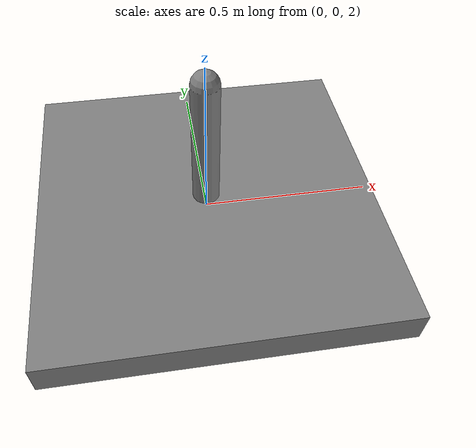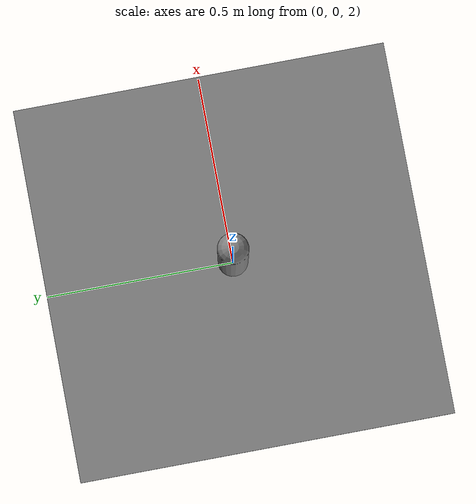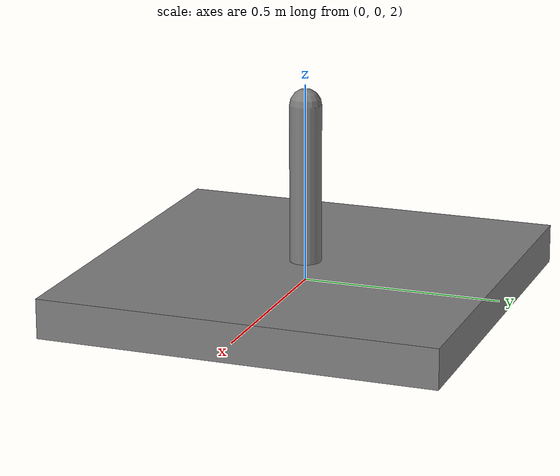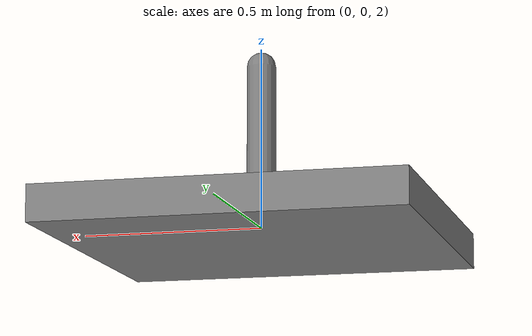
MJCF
<mujoco model="mocap_child">
        <option gravity="0 0 -9.81" timestep="0.002"/>
        <worldbody>
            <body name="platform" mocap="true" pos="0 0 2">
                <geom type="box" size="0.5 0.5 0.05" mass="1.0"/>
                <body name="arm" pos="0 0 0.05">
                    <joint name="hinge" type="hinge" axis="0 1 0"/>
                    <geom type="capsule" size="0.04" fromto="0 0 0 0 0 0.4" mass="0.5"/>
                </body>
            </body>
        </worldbody>
    </mujoco>
